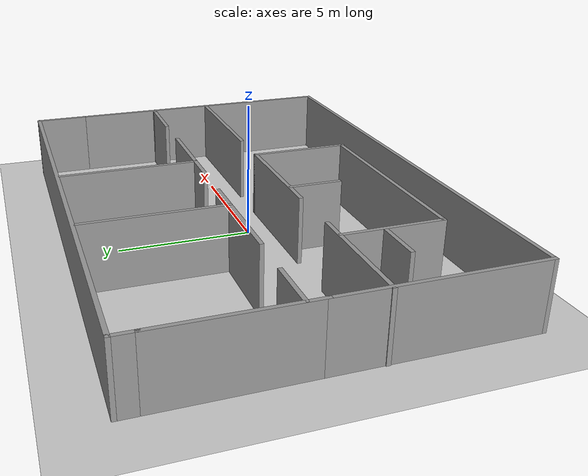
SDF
<?xml version="1.0" ?>
<sdf version='1.5'>

  <world name="default">
    <include>
      <uri>model://sun</uri>
    </include>

    <include>
      <uri>model://ground_plane</uri>
    </include>

    <physics type='ode'>
      <max_step_size>0.01</max_step_size>
      <real_time_factor>1</real_time_factor>
      <real_time_update_rate>100</real_time_update_rate>
      <gravity>0 0 -9.8</gravity>
    </physics>

 <model name='ClosedHome'>
    <pose frame=''>-0.23209 0.324838 0 0 -0 0</pose>
    <link name='Wall_11'>
      <collision name='Wall_11_Collision'>
        <geometry>
          <box>
            <size>2.25 0.15 2.5</size>
          </box>
        </geometry>
        <pose frame=''>0 0 1.25 0 -0 0</pose>
      </collision>
      <visual name='Wall_11_Visual'>
        <pose frame=''>0 0 1.25 0 -0 0</pose>
        <geometry>
          <box>
            <size>2.25 0.15 2.5</size>
          </box>
        </geometry>
        <material>
          <script>
            <uri>file://media/materials/scripts/gazebo.material</uri>
            <name>Gazebo/Grey</name>
          </script>
          <ambient>1 1 1 1</ambient>
        </material>
        <meta>
          <layer>0</layer>
        </meta>
      </visual>
      <pose frame=''>9.19225 5.425 0 0 -0 1.5708</pose>
    </link>
    <link name='Wall_14'>
      <collision name='Wall_14_Collision'>
        <geometry>
          <box>
            <size>5.25 0.15 2.5</size>
          </box>
        </geometry>
        <pose frame=''>0 0 1.25 0 -0 0</pose>
      </collision>
      <visual name='Wall_14_Visual'>
        <pose frame=''>0 0 1.25 0 -0 0</pose>
        <geometry>
          <box>
            <size>5.25 0.15 2.5</size>
          </box>
        </geometry>
        <material>
          <script>
            <uri>file://media/materials/scripts/gazebo.material</uri>
            <name>Gazebo/Grey</name>
          </script>
          <ambient>1 1 1 1</ambient>
        </material>
        <meta>
          <layer>0</layer>
        </meta>
      </visual>
      <pose frame=''>-9.15775 3.175 0 0 -0 1.5708</pose>
    </link>
    <link name='Wall_16'>
      <collision name='Wall_16_Collision'>
        <geometry>
          <box>
            <size>18.5 0.15 2.5</size>
          </box>
        </geometry>
        <pose frame=''>0 0 1.25 0 -0 0</pose>
      </collision>
      <visual name='Wall_16_Visual'>
        <pose frame=''>0 0 1.25 0 -0 0</pose>
        <geometry>
          <box>
            <size>18.5 0.15 2.5</size>
          </box>
        </geometry>
        <material>
          <script>
            <uri>file://media/materials/scripts/gazebo.material</uri>
            <name>Gazebo/Grey</name>
          </script>
          <ambient>1 1 1 1</ambient>
        </material>
        <meta>
          <layer>0</layer>
        </meta>
      </visual>
      <pose frame=''>0.017248 6.475 0 0 -0 3.14159</pose>
    </link>
    <link name='Wall_17'>
      <collision name='Wall_17_Collision'>
        <geometry>
          <box>
            <size>0.9 0.15 2.5</size>
          </box>
        </geometry>
        <pose frame=''>0 0 1.25 0 -0 0</pose>
      </collision>
      <visual name='Wall_17_Visual'>
        <pose frame=''>0 0 1.25 0 -0 0</pose>
        <geometry>
          <box>
            <size>0.9 0.15 2.5</size>
          </box>
        </geometry>
        <material>
          <script>
            <uri>file://media/materials/scripts/gazebo.material</uri>
            <name>Gazebo/Grey</name>
          </script>
          <ambient>1 1 1 1</ambient>
        </material>
        <meta>
          <layer>0</layer>
        </meta>
      </visual>
      <pose frame=''>-9.15775 6.1 0 0 -0 -1.5708</pose>
    </link>
    <link name='Wall_20'>
      <collision name='Wall_20_Collision'>
        <geometry>
          <box>
            <size>4.5 0.15 2.5</size>
          </box>
        </geometry>
        <pose frame=''>0 0 1.25 0 -0 0</pose>
      </collision>
      <visual name='Wall_20_Visual'>
        <pose frame=''>0 0 1.25 0 -0 0</pose>
        <geometry>
          <box>
            <size>4.5 0.15 2.5</size>
          </box>
        </geometry>
        <material>
          <script>
            <uri>file://media/materials/scripts/gazebo.material</uri>
            <name>Gazebo/Grey</name>
          </script>
          <ambient>1 1 1 1</ambient>
        </material>
        <meta>
          <layer>0</layer>
        </meta>
      </visual>
      <pose frame=''>-7.01725 -1.24085 0 0 -0 0</pose>
    </link>
    <link name='Wall_22'>
      <collision name='Wall_22_Collision'>
        <geometry>
          <box>
            <size>4.75 0.15 2.5</size>
          </box>
        </geometry>
        <pose frame=''>0 0 1.25 0 -0 0</pose>
      </collision>
      <visual name='Wall_22_Visual'>
        <pose frame=''>0 0 1.25 0 -0 0</pose>
        <geometry>
          <box>
            <size>4.75 0.15 2.5</size>
          </box>
        </geometry>
        <material>
          <script>
            <uri>file://media/materials/scripts/gazebo.material</uri>
            <name>Gazebo/Grey</name>
          </script>
          <ambient>1 1 1 1</ambient>
        </material>
        <meta>
          <layer>0</layer>
        </meta>
      </visual>
      <pose frame=''>-0.341575 -1.21356 0 0 -0 0</pose>
    </link>
    <link name='Wall_24'>
      <collision name='Wall_24_Collision'>
        <geometry>
          <box>
            <size>5.5 0.15 2.5</size>
          </box>
        </geometry>
        <pose frame=''>0 0 1.25 0 -0 0</pose>
      </collision>
      <visual name='Wall_24_Visual'>
        <pose frame=''>0 0 1.25 0 -0 0</pose>
        <geometry>
          <box>
            <size>5.5 0.15 2.5</size>
          </box>
        </geometry>
        <material>
          <script>
            <uri>file://media/materials/scripts/gazebo.material</uri>
            <name>Gazebo/Grey</name>
          </script>
          <ambient>1 1 1 1</ambient>
        </material>
        <meta>
          <layer>0</layer>
        </meta>
      </visual>
      <pose frame=''>6.44755 -1.21356 0 0 -0 0</pose>
    </link>
    <link name='Wall_26'>
      <collision name='Wall_26_Collision'>
        <geometry>
          <box>
            <size>3.75 0.15 2.5</size>
          </box>
        </geometry>
        <pose frame=''>0 0 1.25 0 -0 0</pose>
      </collision>
      <visual name='Wall_26_Visual'>
        <pose frame=''>0 0 1.25 0 -0 0</pose>
        <geometry>
          <box>
            <size>3.75 0.15 2.5</size>
          </box>
        </geometry>
        <material>
          <script>
            <uri>file://media/materials/scripts/gazebo.material</uri>
            <name>Gazebo/Grey</name>
          </script>
          <ambient>1 1 1 1</ambient>
        </material>
        <meta>
          <layer>0</layer>
        </meta>
      </visual>
      <pose frame=''>-5.76606 -3.08469 0 0 -0 -1.5708</pose>
    </link>
    <link name='Wall_28'>
      <collision name='Wall_28_Collision'>
        <geometry>
          <box>
            <size>1.75 0.15 2.5</size>
          </box>
        </geometry>
        <pose frame=''>0 0 1.25 0 -0 0</pose>
      </collision>
      <visual name='Wall_28_Visual'>
        <pose frame=''>0 0 1.25 0 -0 0</pose>
        <geometry>
          <box>
            <size>1.75 0.15 2.5</size>
          </box>
        </geometry>
        <material>
          <script>
            <uri>file://media/materials/scripts/gazebo.material</uri>
            <name>Gazebo/Grey</name>
          </script>
          <ambient>1 1 1 1</ambient>
        </material>
        <meta>
          <layer>0</layer>
        </meta>
      </visual>
      <pose frame=''>-6.64586 -2.77431 0 0 -0 3.14159</pose>
    </link>
    <link name='Wall_30'>
      <collision name='Wall_30_Collision'>
        <geometry>
          <box>
            <size>7.75 0.15 2.5</size>
          </box>
        </geometry>
        <pose frame=''>0 0 1.25 0 -0 0</pose>
      </collision>
      <visual name='Wall_30_Visual'>
        <pose frame=''>0 0 1.25 0 -0 0</pose>
        <geometry>
          <box>
            <size>7.75 0.15 2.5</size>
          </box>
        </geometry>
        <material>
          <script>
            <uri>file://media/materials/scripts/gazebo.material</uri>
            <name>Gazebo/Grey</name>
          </script>
          <ambient>1 1 1 1</ambient>
        </material>
        <meta>
          <layer>0</layer>
        </meta>
      </visual>
      <pose frame=''>-1.96606 -4.88469 0 0 -0 0</pose>
    </link>
    <link name='Wall_32'>
      <collision name='Wall_32_Collision'>
        <geometry>
          <box>
            <size>3.75 0.15 2.5</size>
          </box>
        </geometry>
        <pose frame=''>0 0 1.25 0 -0 0</pose>
      </collision>
      <visual name='Wall_32_Visual'>
        <pose frame=''>0 0 1.25 0 -0 0</pose>
        <geometry>
          <box>
            <size>3.75 0.15 2.5</size>
          </box>
        </geometry>
        <material>
          <script>
            <uri>file://media/materials/scripts/gazebo.material</uri>
            <name>Gazebo/Grey</name>
          </script>
          <ambient>1 1 1 1</ambient>
        </material>
        <meta>
          <layer>0</layer>
        </meta>
      </visual>
      <pose frame=''>1.95843 -3.01356 0 0 -0 -1.5708</pose>
    </link>
    <link name='Wall_35'>
      <collision name='Wall_35_Collision'>
        <geometry>
          <box>
            <size>0.25 0.15 2.5</size>
          </box>
        </geometry>
        <pose frame=''>0 0 1.25 0 -0 0</pose>
      </collision>
      <visual name='Wall_35_Visual'>
        <pose frame=''>0 0 1.25 0 -0 0</pose>
        <geometry>
          <box>
            <size>0.25 0.15 2.5</size>
          </box>
        </geometry>
        <material>
          <script>
            <uri>file://media/materials/scripts/gazebo.material</uri>
            <name>Gazebo/Grey</name>
          </script>
          <ambient>1 1 1 1</ambient>
        </material>
        <meta>
          <layer>0</layer>
        </meta>
      </visual>
      <pose frame=''>1.95843 -4.86356 0 0 -0 -1.5708</pose>
    </link>
    <link name='Wall_37'>
      <collision name='Wall_37_Collision'>
        <geometry>
          <box>
            <size>2 0.15 2.5</size>
          </box>
        </geometry>
        <pose frame=''>0 0 1.25 0 -0 0</pose>
      </collision>
      <visual name='Wall_37_Visual'>
        <pose frame=''>0 0 1.25 0 -0 0</pose>
        <geometry>
          <box>
            <size>2 0.15 2.5</size>
          </box>
        </geometry>
        <material>
          <script>
            <uri>file://media/materials/scripts/gazebo.material</uri>
            <name>Gazebo/Grey</name>
          </script>
          <ambient>1 1 1 1</ambient>
        </material>
        <meta>
          <layer>0</layer>
        </meta>
      </visual>
      <pose frame=''>-1.63724 -2.18621 0 0 -0 -1.5708</pose>
    </link>
    <link name='Wall_40'>
      <collision name='Wall_40_Collision'>
        <geometry>
          <box>
            <size>5.25 0.15 2.5</size>
          </box>
        </geometry>
        <pose frame=''>0 0 1.25 0 -0 0</pose>
      </collision>
      <visual name='Wall_40_Visual'>
        <pose frame=''>0 0 1.25 0 -0 0</pose>
        <geometry>
          <box>
            <size>5.25 0.15 2.5</size>
          </box>
        </geometry>
        <material>
          <script>
            <uri>file://media/materials/scripts/gazebo.material</uri>
            <name>Gazebo/Grey</name>
          </script>
          <ambient>1 1 1 1</ambient>
        </material>
        <meta>
          <layer>0</layer>
        </meta>
      </visual>
      <pose frame=''>1.96533 3.79813 0 0 -0 1.5708</pose>
    </link>
    <link name='Wall_42'>
      <collision name='Wall_42_Collision'>
        <geometry>
          <box>
            <size>1.5 0.15 2.5</size>
          </box>
        </geometry>
        <pose frame=''>0 0 1.25 0 -0 0</pose>
      </collision>
      <visual name='Wall_42_Visual'>
        <pose frame=''>0 0 1.25 0 -0 0</pose>
        <geometry>
          <box>
            <size>1.5 0.15 2.5</size>
          </box>
        </geometry>
        <material>
          <script>
            <uri>file://media/materials/scripts/gazebo.material</uri>
            <name>Gazebo/Grey</name>
          </script>
          <ambient>1 1 1 1</ambient>
        </material>
        <meta>
          <layer>0</layer>
        </meta>
      </visual>
      <pose frame=''>1.29033 1.24813 0 0 -0 3.14159</pose>
    </link>
    <link name='Wall_47'>
      <collision name='Wall_47_Collision'>
        <geometry>
          <box>
            <size>5.25 0.15 2.5</size>
          </box>
        </geometry>
        <pose frame=''>0 0 1.25 0 -0 0</pose>
      </collision>
      <visual name='Wall_47_Visual'>
        <pose frame=''>0 0 1.25 0 -0 0</pose>
        <geometry>
          <box>
            <size>5.25 0.15 2.5</size>
          </box>
        </geometry>
        <material>
          <script>
            <uri>file://media/materials/scripts/gazebo.material</uri>
            <name>Gazebo/Grey</name>
          </script>
          <ambient>1 1 1 1</ambient>
        </material>
        <meta>
          <layer>0</layer>
        </meta>
      </visual>
      <pose frame=''>-2.45266 3.80428 0 0 -0 1.5708</pose>
    </link>
    <link name='Wall_49'>
      <collision name='Wall_49_Collision'>
        <geometry>
          <box>
            <size>1.5 0.15 2.5</size>
          </box>
        </geometry>
        <pose frame=''>0 0 1.25 0 -0 0</pose>
      </collision>
      <visual name='Wall_49_Visual'>
        <pose frame=''>0 0 1.25 0 -0 0</pose>
        <geometry>
          <box>
            <size>1.5 0.15 2.5</size>
          </box>
        </geometry>
        <material>
          <script>
            <uri>file://media/materials/scripts/gazebo.material</uri>
            <name>Gazebo/Grey</name>
          </script>
          <ambient>1 1 1 1</ambient>
        </material>
        <meta>
          <layer>0</layer>
        </meta>
      </visual>
      <pose frame=''>-1.77766 1.25428 0 0 -0 0</pose>
    </link>
    <link name='Wall_5'>
      <collision name='Wall_5_Collision'>
        <geometry>
          <box>
            <size>7.25 0.15 2.5</size>
          </box>
        </geometry>
        <pose frame=''>0 0 1.25 0 -0 0</pose>
      </collision>
      <visual name='Wall_5_Visual'>
        <pose frame=''>0 0 1.25 0 -0 0</pose>
        <geometry>
          <box>
            <size>7.25 0.15 2.5</size>
          </box>
        </geometry>
        <material>
          <script>
            <uri>file://media/materials/scripts/gazebo.material</uri>
            <name>Gazebo/Grey</name>
          </script>
          <ambient>1 1 1 1</ambient>
        </material>
        <meta>
          <layer>0</layer>
        </meta>
      </visual>
      <pose frame=''>-9.15775 -2.925 0 0 -0 1.5708</pose>
    </link>
    <link name='Wall_51'>
      <collision name='Wall_51_Collision'>
        <geometry>
          <box>
            <size>3.25 0.15 2.5</size>
          </box>
        </geometry>
        <pose frame=''>0 0 1.25 0 -0 0</pose>
      </collision>
      <visual name='Wall_51_Visual'>
        <pose frame=''>0 0 1.25 0 -0 0</pose>
        <geometry>
          <box>
            <size>3.25 0.15 2.5</size>
          </box>
        </geometry>
        <material>
          <script>
            <uri>file://media/materials/scripts/gazebo.material</uri>
            <name>Gazebo/Grey</name>
          </script>
          <ambient>1 1 1 1</ambient>
        </material>
        <meta>
          <layer>0</layer>
        </meta>
      </visual>
      <pose frame=''>-4.00266 1.25428 0 0 -0 3.14159</pose>
    </link>
    <link name='Wall_53'>
      <collision name='Wall_53_Collision'>
        <geometry>
          <box>
            <size>2 0.15 2.5</size>
          </box>
        </geometry>
        <pose frame=''>0 0 1.25 0 -0 0</pose>
      </collision>
      <visual name='Wall_53_Visual'>
        <pose frame=''>0 0 1.25 0 -0 0</pose>
        <geometry>
          <box>
            <size>2 0.15 2.5</size>
          </box>
        </geometry>
        <material>
          <script>
            <uri>file://media/materials/scripts/gazebo.material</uri>
            <name>Gazebo/Grey</name>
          </script>
          <ambient>1 1 1 1</ambient>
        </material>
        <meta>
          <layer>0</layer>
        </meta>
      </visual>
      <pose frame=''>-8.20931 1.28653 0 0 -0 0</pose>
    </link>
    <link name='Wall_55'>
      <collision name='Wall_55_Collision'>
        <geometry>
          <box>
            <size>3 0.15 2.5</size>
          </box>
        </geometry>
        <pose frame=''>0 0 1.25 0 -0 0</pose>
      </collision>
      <visual name='Wall_55_Visual'>
        <pose frame=''>0 0 1.25 0 -0 0</pose>
        <geometry>
          <box>
            <size>3 0.15 2.5</size>
          </box>
        </geometry>
        <material>
          <script>
            <uri>file://media/materials/scripts/gazebo.material</uri>
            <name>Gazebo/Grey</name>
          </script>
          <ambient>1 1 1 1</ambient>
        </material>
        <meta>
          <layer>0</layer>
        </meta>
      </visual>
      <pose frame=''>3.39033 1.24813 0 0 -0 0</pose>
    </link>
    <link name='Wall_57'>
      <collision name='Wall_57_Collision'>
        <geometry>
          <box>
            <size>2.5 0.15 2.5</size>
          </box>
        </geometry>
        <pose frame=''>0 0 1.25 0 -0 0</pose>
      </collision>
      <visual name='Wall_57_Visual'>
        <pose frame=''>0 0 1.25 0 -0 0</pose>
        <geometry>
          <box>
            <size>2.5 0.15 2.5</size>
          </box>
        </geometry>
        <material>
          <script>
            <uri>file://media/materials/scripts/gazebo.material</uri>
            <name>Gazebo/Grey</name>
          </script>
          <ambient>1 1 1 1</ambient>
        </material>
        <meta>
          <layer>0</layer>
        </meta>
      </visual>
      <pose frame=''>7.85075 1.27091 0 0 -0 0</pose>
    </link>
    <link name='Wall_59'>
      <collision name='Wall_59_Collision'>
        <geometry>
          <box>
            <size>0.25 0.15 2.5</size>
          </box>
        </geometry>
        <pose frame=''>0 0 1.25 0 -0 0</pose>
      </collision>
      <visual name='Wall_59_Visual'>
        <pose frame=''>0 0 1.25 0 -0 0</pose>
        <geometry>
          <box>
            <size>0.25 0.15 2.5</size>
          </box>
        </geometry>
        <material>
          <script>
            <uri>file://media/materials/scripts/gazebo.material</uri>
            <name>Gazebo/Grey</name>
          </script>
          <ambient>1 1 1 1</ambient>
        </material>
        <meta>
          <layer>0</layer>
        </meta>
      </visual>
      <pose frame=''>9.07575 1.27091 0 0 -0 0</pose>
    </link>
    <link name='Wall_7'>
      <collision name='Wall_7_Collision'>
        <geometry>
          <box>
            <size>18.5 0.15 2.5</size>
          </box>
        </geometry>
        <pose frame=''>0 0 1.25 0 -0 0</pose>
      </collision>
      <visual name='Wall_7_Visual'>
        <pose frame=''>0 0 1.25 0 -0 0</pose>
        <geometry>
          <box>
            <size>18.5 0.15 2.5</size>
          </box>
        </geometry>
        <material>
          <script>
            <uri>file://media/materials/scripts/gazebo.material</uri>
            <name>Gazebo/Grey</name>
          </script>
          <ambient>1 1 1 1</ambient>
        </material>
        <meta>
          <layer>0</layer>
        </meta>
      </visual>
      <pose frame=''>0.017248 -6.475 0 0 -0 0</pose>
    </link>
    <link name='Wall_9'>
      <collision name='Wall_9_Collision'>
        <geometry>
          <box>
            <size>11 0.15 2.5</size>
          </box>
        </geometry>
        <pose frame=''>0 0 1.25 0 -0 0</pose>
      </collision>
      <visual name='Wall_9_Visual'>
        <pose frame=''>0 0 1.25 0 -0 0</pose>
        <geometry>
          <box>
            <size>11 0.15 2.5</size>
          </box>
        </geometry>
        <material>
          <script>
            <uri>file://media/materials/scripts/gazebo.material</uri>
            <name>Gazebo/Grey</name>
          </script>
          <ambient>1 1 1 1</ambient>
        </material>
        <meta>
          <layer>0</layer>
        </meta>
      </visual>
      <pose frame=''>9.19225 -1.05 0 0 -0 1.5708</pose>
    </link>
    <static>1</static>
  </model>

</world>
</sdf>
